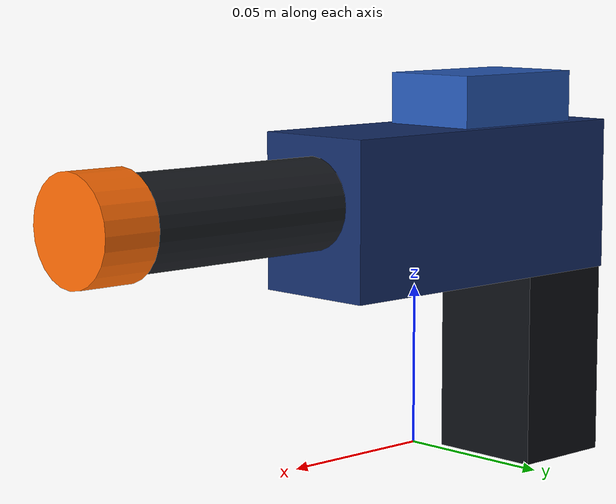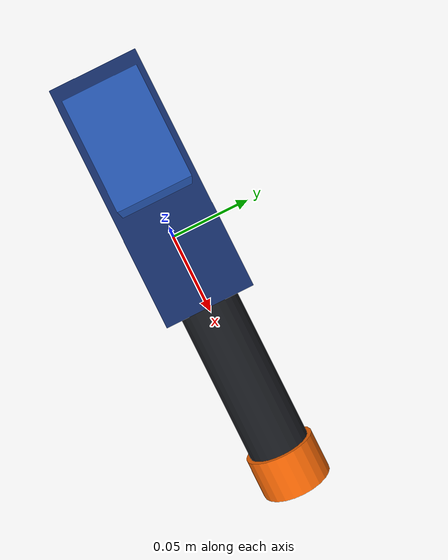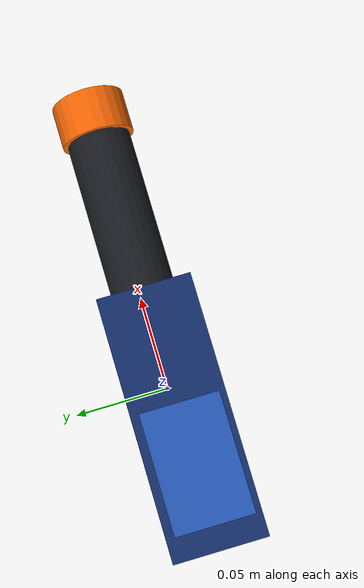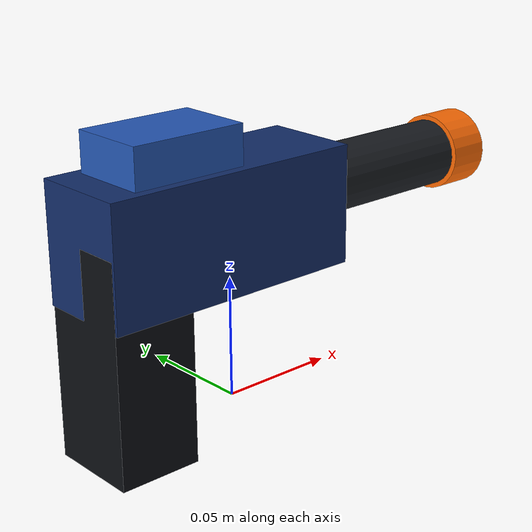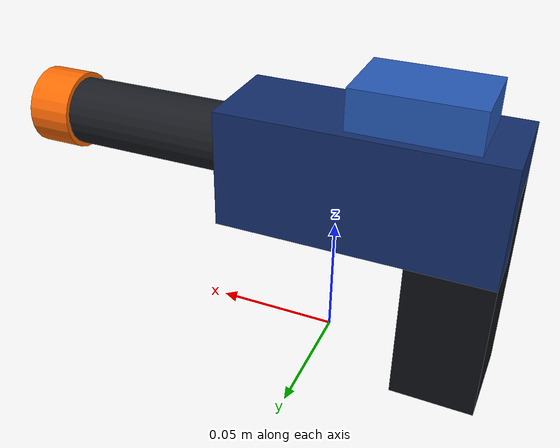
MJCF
<mujoco model="custom_obvious_toy_gun">
  <worldbody>
    <body>
      <body name="object">
        <geom conaffinity="0" contype="0" group="1" pos="-0.012 0 0.075" rgba="0.08 0.18 0.42 1" size="0.055 0.020 0.024" type="box" />
        <geom conaffinity="0" contype="0" group="1" pos="0.065 0 0.079" quat="0.7071068 0 0.7071068 0" rgba="0.10 0.11 0.13 1" size="0.014 0.052" type="cylinder" />
        <geom conaffinity="0" contype="0" group="1" pos="0.122 0 0.079" quat="0.7071068 0 0.7071068 0" rgba="1.0 0.42 0.02 1" size="0.016 0.009" type="cylinder" />
        <geom conaffinity="0" contype="0" group="1" pos="-0.050 0 0.034" euler="0 0 -0.32" rgba="0.05 0.06 0.08 1" size="0.017 0.019 0.044" type="box" />
        <geom conaffinity="0" contype="0" group="1" pos="-0.030 0 0.105" rgba="0.15 0.35 0.72 1" size="0.024 0.016 0.010" type="box" />
        <geom density="100" friction="0.95 0.3 0.1" group="0" pos="0.016 0 0.065" rgba="0.8 0.8 0.8 0.0" size="0.125 0.030 0.065" type="box" />
        <geom
          name="reg_bbox"
          conaffinity="0"
          contype="0"
          group="3"
          pos="0.0160 0.0000 0.0750"
          rgba="0 0 0 0"
          size="0.1320 0.0350 0.0750"
          type="box"
        />
      </body>
      <site rgba="0 0 0 0" size="0.005" pos="0 0 0" name="bottom_site" />
      <site rgba="0 0 0 0" size="0.005" pos="0 0 0.1500" name="top_site" />
      <site rgba="0 0 0 0" size="0.005" pos="0.1320 0.1320 0" name="horizontal_radius_site" />
    </body>
  </worldbody>
</mujoco>
